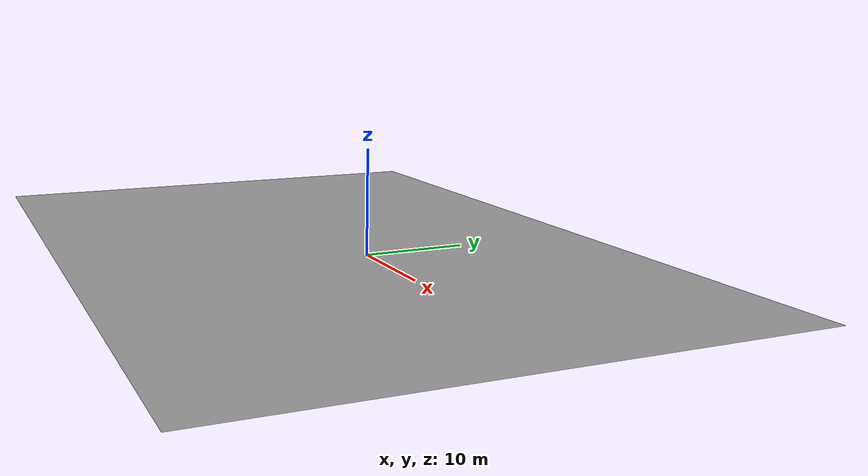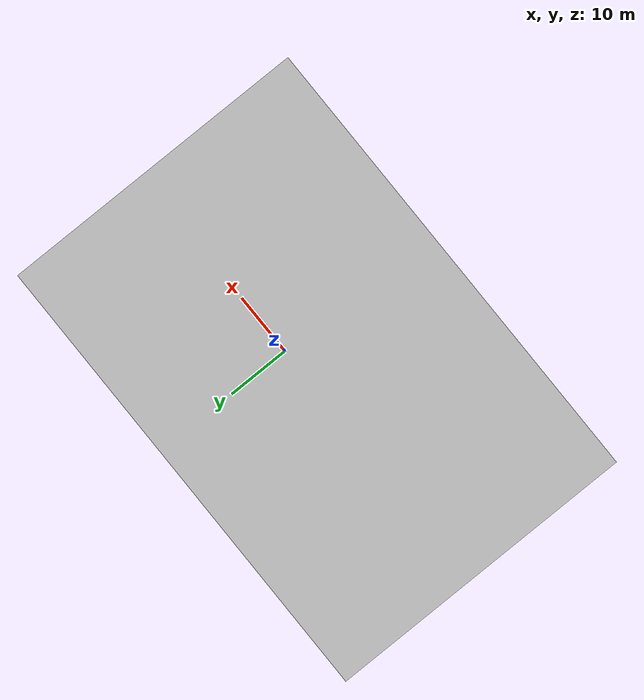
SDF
<sdf version="1.6">
 <world name="default">
  <gravity>0 0 -9.8</gravity>
  <magnetic_field>6e-06 2.3e-05 -4.2e-05</magnetic_field>
  <atmosphere type="adiabatic"/>
  <physics name="default_physics" default="0" type="ode">
   <max_step_size>0.001</max_step_size>
   <real_time_factor>1</real_time_factor>
   <real_time_update_rate>1000</real_time_update_rate>
  </physics>
  <scene><ambient>0.4 0.4 0.4 1</ambient><background>0.7 0.7 0.7 1</background><shadows>1</shadows></scene>
  <spherical_coordinates>
   <surface_model>EARTH_WGS84</surface_model>
   <latitude_deg>-37.9142</latitude_deg>
   <longitude_deg>145.1347</longitude_deg>
   <elevation>0</elevation>
   <heading_deg>180</heading_deg>
  </spherical_coordinates>
  <model name="aws_robomaker_racetrack_Ground_01_00">
   <include><uri>model://aws_robomaker_racetrack_Ground_01</uri></include>
   <pose>-4.9 -2 0.05 0 -0 0</pose>
  </model>
  <model name="ground_plane">
   <pose>0 0 -1 0 -0 0</pose>
   <scale>1 1 1</scale>
   <link name="link">
    <pose>0 0 -1 0 -0 0</pose>
    <velocity>0 0 0 0 -0 0</velocity>
    <acceleration>0 0 0 0 -0 0</acceleration>
   </link>
  </model>
  <light name="sun" type="directional">
   <pose>0 0 10 0 0 0</pose>
   <diffuse>1 1 1 1</diffuse>
   <specular>1 1 1 1</specular>
   <attenuation>
    <range>1000</range>
    <constant>0.9</constant>
    <linear>0.01</linear>
    <quadratic>0.001</quadratic>
   </attenuation>
   <direction>-0.5 0.1 -0.9</direction>
  </light>
  <light name="sun2" type="directional">
   <pose>0 0 10 0 0 0</pose>
   <diffuse>1 1 1 1</diffuse>
   <specular>1 1 1 1</specular>
   <attenuation>
    <range>1000</range>
    <constant>0.9</constant>
    <linear>0.01</linear>
    <quadratic>0.001</quadratic>
   </attenuation>
   <direction>-0.5 0.1 -0.9</direction>
  </light>
  <light name="user_point_light_0" type="point">
   <pose>1.49278 -15.5363 1 0 -0 0</pose>
   <diffuse>0 0.98039 0 1</diffuse>
   <specular>0.1 0.1 0.1 1</specular>
   <attenuation>
    <range>0.3</range>
    <constant>0.02</constant>
    <linear>0.01</linear>
    <quadratic>0</quadratic>
   </attenuation>
   <cast_shadows>0</cast_shadows>
   <direction>0 0 -1</direction>
  </light>
  <light name="user_point_light_1" type="point">
   <pose>6.99411 -11.55 1 0 -0 0</pose>
   <diffuse>0 0.98039 0 1</diffuse>
   <specular>0.1 0.1 0.1 1</specular>
   <attenuation>
    <range>0.3</range>
    <constant>0.02</constant>
    <linear>0.01</linear>
    <quadratic>0</quadratic>
   </attenuation>
   <cast_shadows>0</cast_shadows>
   <direction>0 0 -1</direction>
  </light>
  <light name="user_point_light_2" type="point">
   <pose>5.65528 -14.8924 1 0 -0 0</pose>
   <diffuse>0 0.98039 0 1</diffuse>
   <specular>0.1 0.1 0.1 1</specular>
   <attenuation>
    <range>0.3</range>
    <constant>0.02</constant>
    <linear>0.01</linear>
    <quadratic>0</quadratic>
   </attenuation>
   <cast_shadows>0</cast_shadows>
   <direction>0 0 -1</direction>
  </light>
  <light name="user_point_light_3" type="point">
   <pose>3.6452 -17.3437 1 0 -0 0</pose>
   <diffuse>0 0.98039 0 1</diffuse>
   <specular>0.1 0.1 0.1 1</specular>
   <attenuation>
    <range>0.3</range>
    <constant>0.02</constant>
    <linear>0.01</linear>
    <quadratic>0</quadratic>
   </attenuation>
   <cast_shadows>0</cast_shadows>
   <direction>0 0 -1</direction>
  </light>
 </world>
</sdf>

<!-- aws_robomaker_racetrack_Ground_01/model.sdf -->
<sdf version='1.6'>
  <model name='aws_Ground_01'>
    <link name='body'>
      <pose frame=''>0 0 0 0 -0 0</pose>
      <self_collide>0</self_collide>
      <kinematic>0</kinematic>
      <gravity>1</gravity>
      <inertial>
        <mass>10000</mass>
        <pose frame=''>0 0 0 0 -0 0</pose>
        <inertia>
          <ixx>0</ixx>
          <ixy>0</ixy>
          <ixz>0</ixz>
          <iyy>0</iyy>
          <iyz>0</iyz>
          <izz>0</izz>
        </inertia>
      </inertial>
      <visual name='visual'>
        <geometry>
          <mesh>
            <uri>file://models/aws_robomaker_racetrack_Ground_01/meshes/aws_Ground_01_visual.obj</uri>
            <scale>0.00090 0.0006 0.002</scale>
          </mesh>
        </geometry>
        <material>
          <shader type='pixel'>
            <normal_map>__default__</normal_map>
          </shader>
        </material>
        <pose frame=''>0 0 0 0 -0 0</pose>
        <cast_shadows>1</cast_shadows>
        <transparency>0</transparency>
        <meta>
          <layer>0</layer>
        </meta>
      </visual>
      <collision name='collision_0'>
        <laser_retro>0</laser_retro>
        <max_contacts>10</max_contacts>
        <pose frame=''>0 0 0 0 0 0</pose>
        <geometry>
          <mesh>
            <uri>file://models/aws_robomaker_racetrack_Ground_01/meshes/aws_Ground_01_collision.obj</uri>
            <scale>0.002 0.002 0.002</scale>
          </mesh>
        </geometry>
        <surface>
          <friction>
            <ode>
              <mu>1</mu>
              <mu2>1</mu2>
              <fdir1>0 0 0</fdir1>
              <slip1>0</slip1>
              <slip2>0</slip2>
            </ode>
            <torsional>
              <coefficient>1</coefficient>
              <patch_radius>0</patch_radius>
              <surface_radius>0</surface_radius>
              <use_patch_radius>1</use_patch_radius>
              <ode>
                <slip>0</slip>
              </ode>
            </torsional>
          </friction>
          <bounce>
            <restitution_coefficient>0</restitution_coefficient>
            <threshold>1e+06</threshold>
          </bounce>
          <contact>
            <collide_without_contact>0</collide_without_contact>
            <collide_without_contact_bitmask>1</collide_without_contact_bitmask>
            <collide_bitmask>0xffff</collide_bitmask>
            <ode>
              <soft_cfm>0</soft_cfm>
              <soft_erp>0.2</soft_erp>
              <kp>1e+13</kp>
              <kd>1</kd>
              <max_vel>0.01</max_vel>
              <min_depth>0</min_depth>
            </ode>
            <bullet>
              <split_impulse>1</split_impulse>
              <split_impulse_penetration_threshold>-0.01</split_impulse_penetration_threshold>
              <soft_cfm>0</soft_cfm>
              <soft_erp>0.2</soft_erp>
              <kp>1e+13</kp>
              <kd>1</kd>
            </bullet>
          </contact>
        </surface>
      </collision>
    </link>
    <static>1</static>
  </model>
</sdf>
